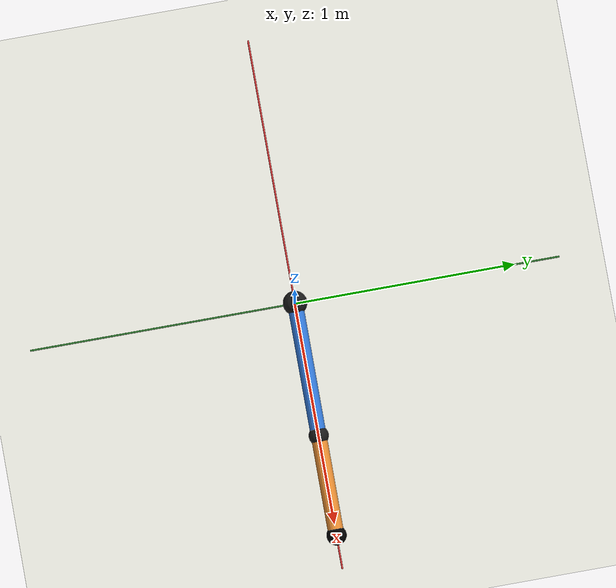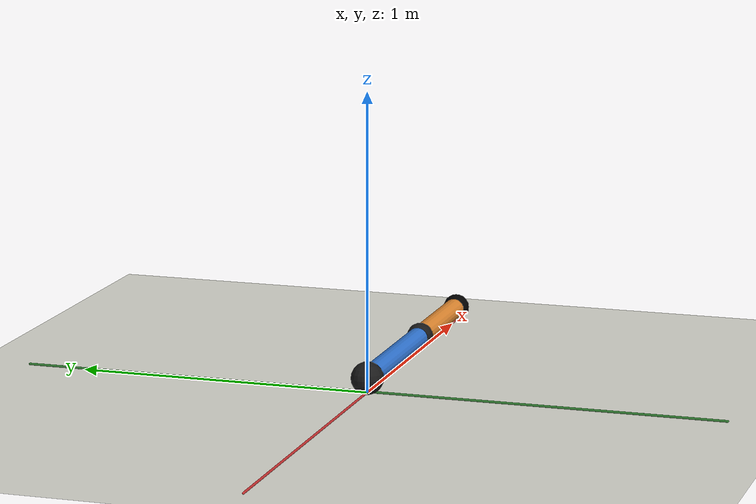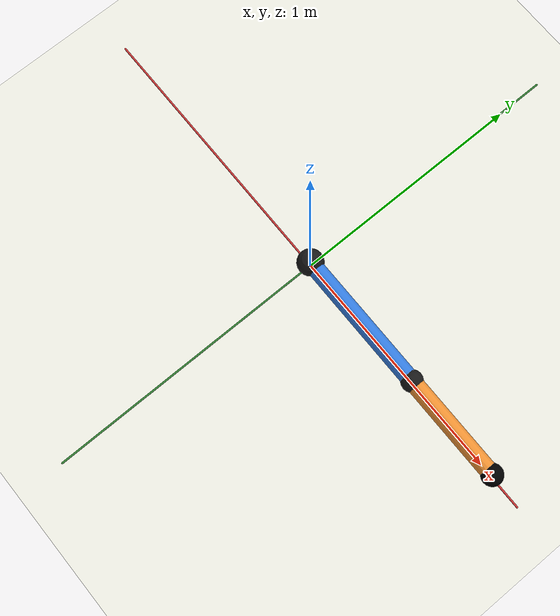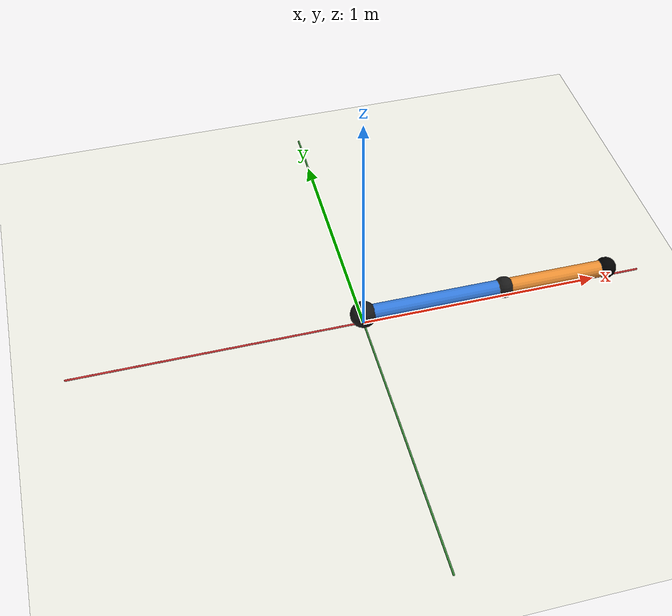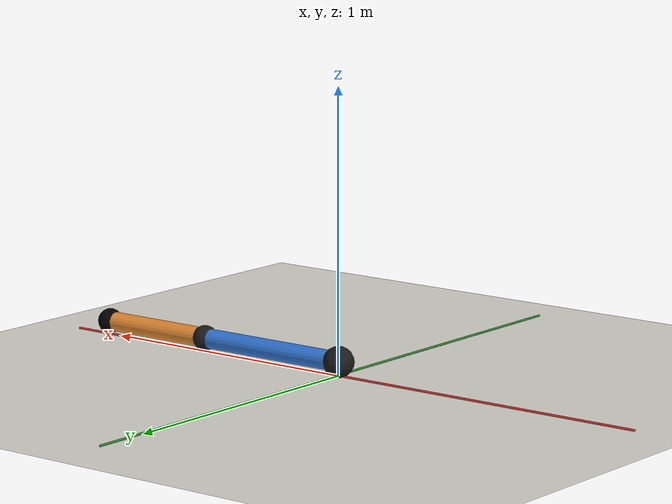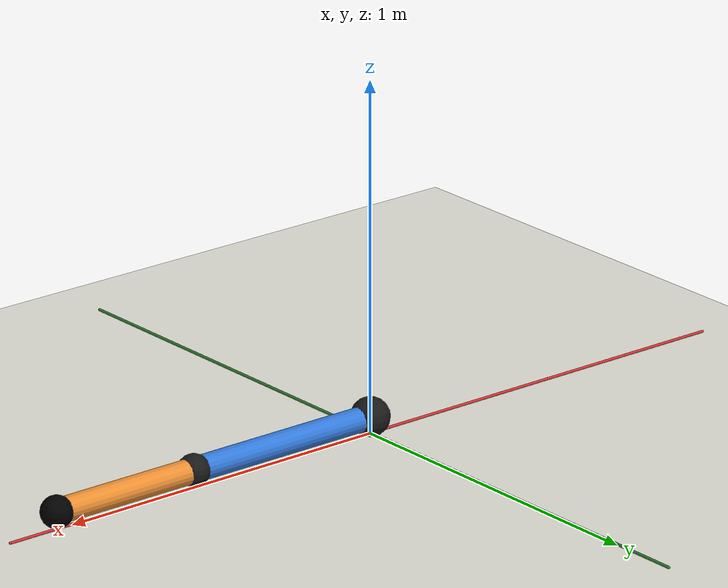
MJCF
<mujoco model="lab03_two_link_arm">
  <compiler angle="radian"/>
  <option timestep="0.002" gravity="0 0 0"/>

  <default>
    <joint damping="0.15" armature="0.01" limited="true"/>
    <geom type="capsule" size="0.035" density="550" rgba="0.20 0.48 0.86 1"/>
    <motor ctrllimited="true" ctrlrange="-80 80"/>
  </default>

  <worldbody>
    <light name="key" pos="0 -2 2" dir="0 1 -1"/>
    <camera name="top" pos="0 0 2.2" xyaxes="1 0 0 0 1 0"/>
    <geom name="floor_grid" type="plane" size="1.4 1.4 0.01" rgba="0.92 0.92 0.88 1"/>
    <geom name="x_axis" type="capsule" fromto="-1.2 0 0.002 1.2 0 0.002" size="0.004" rgba="0.8 0.2 0.2 1"/>
    <geom name="y_axis" type="capsule" fromto="0 -1.2 0.004 0 1.2 0.004" size="0.004" rgba="0.2 0.5 0.2 1"/>

    <body name="link1" pos="0 0 0.05">
      <joint name="shoulder" type="hinge" axis="0 0 1" range="-3.14159 3.14159"/>
      <geom name="link1_geom" fromto="0 0 0 0.6 0 0"/>
      <geom name="shoulder_marker" type="sphere" size="0.055" rgba="0.1 0.1 0.1 1"/>

      <body name="link2" pos="0.6 0 0">
        <joint name="elbow" type="hinge" axis="0 0 1" range="-2.7 2.7"/>
        <geom name="link2_geom" fromto="0 0 0 0.45 0 0" rgba="0.92 0.56 0.2 1"/>
        <geom name="elbow_marker" type="sphere" size="0.045" rgba="0.1 0.1 0.1 1"/>
        <site name="ee" pos="0.45 0 0" size="0.045" rgba="0.0 0.0 0.0 1"/>
      </body>
    </body>
  </worldbody>

  <actuator>
    <motor name="shoulder_motor" joint="shoulder" gear="1"/>
    <motor name="elbow_motor" joint="elbow" gear="1"/>
  </actuator>
</mujoco>
